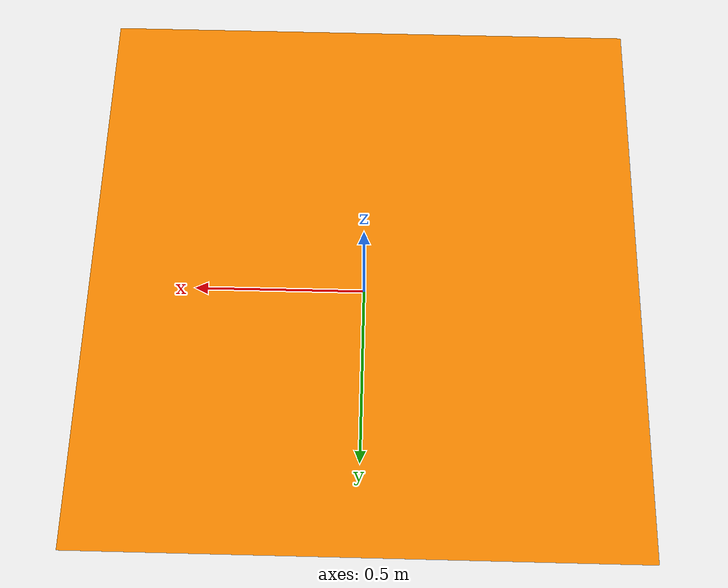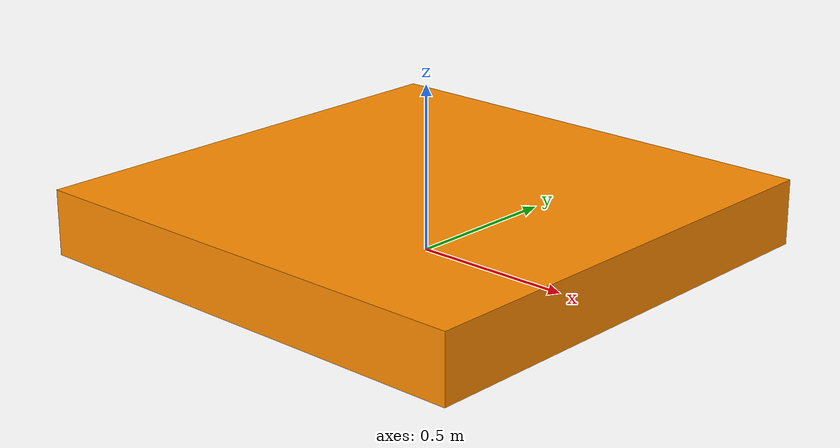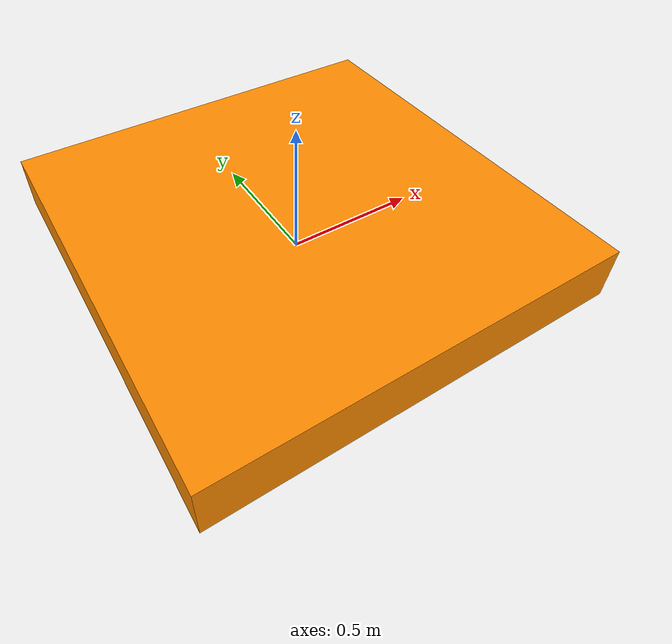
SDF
<?xml version='1.0'?>
<sdf version='1.4'>
  <model name="small_rectangle">
    <link name="link" >
      <pose>0 0 0.1 0 0 0</pose>
      <inertial>
        <mass>0.5</mass>
        <inertia>
          <!-- http://answers.gazebosim.org/question/4372/the-inertia-matrix-explained/ -->
          <ixx>0.005395</ixx>   <!-- for a box: ixx = 0.083 * mass * (y*y + z*z) -->
          <ixy>0.0</ixy>        <!-- for a box: ixy = 0 -->
          <ixz>0.0</ixz>        <!-- for a box: ixz = 0 -->
          <iyy>0.005395</iyy>   <!-- for a box: iyy = 0.083 * mass * (x*x + z*z) -->
          <iyz>0.0</iyz>        <!-- for a box: iyz = 0 -->
          <izz>0.007470</izz>   <!-- for a box: izz = 0.083 * mass * (x*x + y*y) -->
        </inertia>
      </inertial>
      <collision name="collision">
        <geometry>
          <box>
            <size>0.3 0.3 0.2</size>
          </box>
        </geometry>
      </collision>
      <visual name="visual">
        <geometry>
          <box>
            <size>1.5 1.5 0.2</size>
          </box>
        </geometry>
        <material>
          <ambient>1 0.549 0 1</ambient> <!-- dark Orange -->
          <diffuse>1 0.549 0 1</diffuse>
          <specular>0.1 0.1 0.1 1</specular>
          <emissive>0 0 0 0</emissive>
        </material>
      </visual>
    </link>
  </model>
</sdf>
